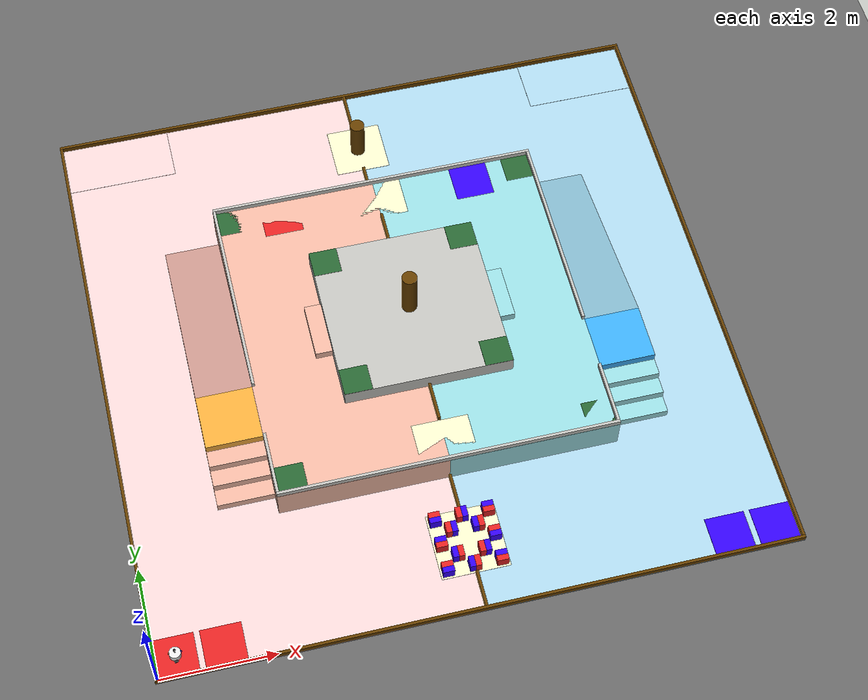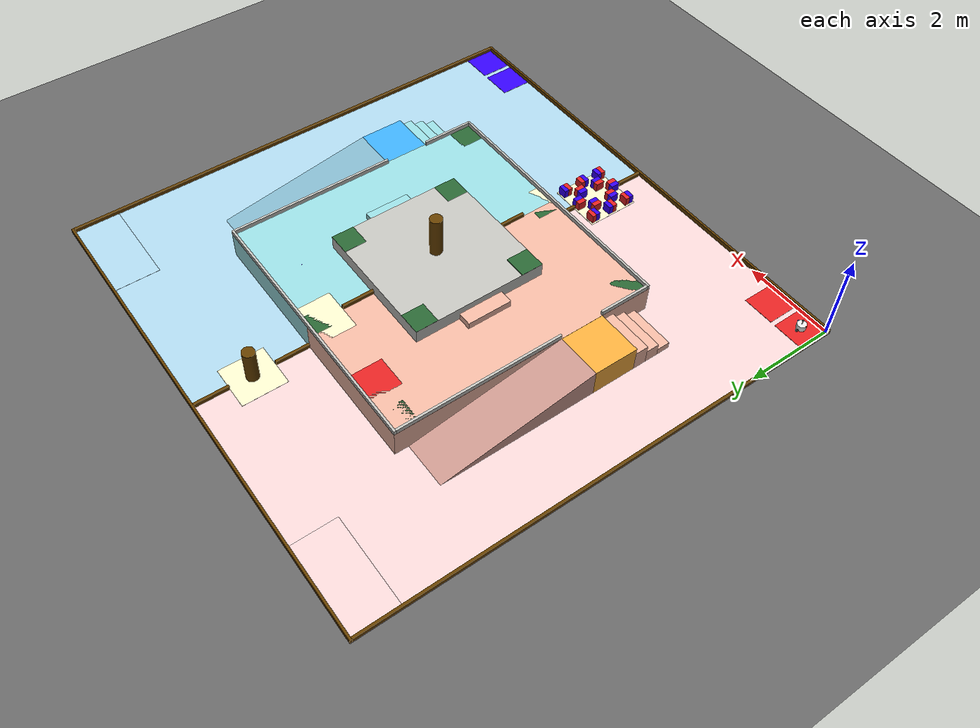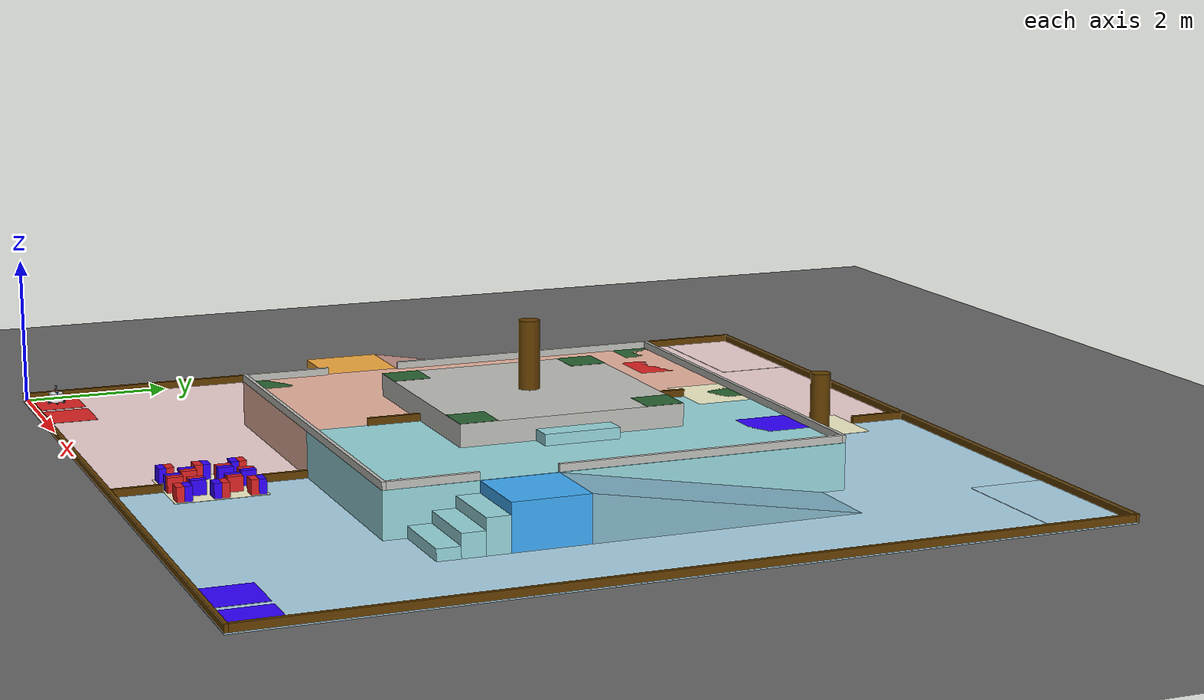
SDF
<?xml version="1.0"?>
<sdf version="1.6">
  <world name="br_field">
    <physics type="ode"><max_step_size>0.005</max_step_size></physics>
    <light type="directional" name="sun"><pose>0 0 6 0 0 0</pose>
      <diffuse>0.9 0.9 0.9 1</diffuse><specular>0.2 0.2 0.2 1</specular>
      <direction>-0.5 0.2 -1</direction></light>
    <model name="ground">
      <static>true</static>
      <link name="ground_link"><visual name="v"><geometry><plane><normal>0 0 1</normal><size>30 30</size></plane></geometry>
      <material><ambient>0.4 0.4 0.4 1</ambient><diffuse>0.4 0.4 0.4 1</diffuse></material></visual>
      <collision name="c"><geometry><plane><normal>0 0 1</normal><size>30 30</size></plane></geometry></collision></link>
    </model>
    <include><uri>model://br_field</uri></include>
    <!-- 仿真载具 (顶替未完工的实车); 出生位姿 = 红区 TR 启动位中心 -->
    <include>
      <uri>model://fishbot</uri>
      <pose>0.35 0.35 0.005 0 0 0.0</pose>
    </include>
  </world>
</sdf>

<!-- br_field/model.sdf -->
<sdf version="1.6">
  <model name="br_field">
    <static>true</static>
    <link name="ground_red">
      <pose>2.725 5.5 -0.025 0 0 0</pose>
      <visual name="v"><geometry><box><size>5.55 11.1 0.05</size></box></geometry><material><ambient>0.941 0.824 0.824 1.00</ambient><diffuse>0.941 0.824 0.824 1.00</diffuse></material></visual>
      <collision name="c"><geometry><box><size>5.55 11.1 0.05</size></box></geometry></collision>
    </link>
    <link name="ground_blue">
      <pose>8.275 5.5 -0.025 0 0 0</pose>
      <visual name="v"><geometry><box><size>5.55 11.1 0.05</size></box></geometry><material><ambient>0.667 0.824 0.902 1.00</ambient><diffuse>0.667 0.824 0.902 1.00</diffuse></material></visual>
      <collision name="c"><geometry><box><size>5.55 11.1 0.05</size></box></geometry></collision>
    </link>
    <link name="ground_shared_area">
      <pose>5.5 9.75 0.002 0 0 0</pose>
      <visual name="v"><geometry><box><size>1 1 0.004</size></box></geometry><material><ambient>0.961 0.941 0.784 1.00</ambient><diffuse>0.961 0.941 0.784 1.00</diffuse></material></visual>
    </link>
    <link name="sky_board">
      <pose>5.5 1.25 0.002 0 0 0</pose>
      <visual name="v"><geometry><box><size>1.2 1.2 0.004</size></box></geometry><material><ambient>0.961 0.941 0.784 1.00</ambient><diffuse>0.961 0.941 0.784 1.00</diffuse></material></visual>
    </link>
    <link name="storage_ours">
      <pose>1 10.5 0.002 0 0 0</pose>
      <visual name="v"><geometry><box><size>2 1 0.004</size></box></geometry><material><ambient>0.941 0.824 0.824 1.00</ambient><diffuse>0.941 0.824 0.824 1.00</diffuse></material></visual>
    </link>
    <link name="storage_theirs">
      <pose>10 10.5 0.002 0 0 0</pose>
      <visual name="v"><geometry><box><size>2 1 0.004</size></box></geometry><material><ambient>0.667 0.824 0.902 1.00</ambient><diffuse>0.667 0.824 0.902 1.00</diffuse></material></visual>
    </link>
    <link name="start_ours_tr">
      <pose>0.35 0.35 0.002 0 0 0</pose>
      <visual name="v"><geometry><box><size>0.7 0.7 0.004</size></box></geometry><material><ambient>0.875 0.133 0.133 1.00</ambient><diffuse>0.875 0.133 0.133 1.00</diffuse></material></visual>
    </link>
    <link name="start_ours_br">
      <pose>1.15 0.35 0.002 0 0 0</pose>
      <visual name="v"><geometry><box><size>0.7 0.7 0.004</size></box></geometry><material><ambient>0.875 0.133 0.133 1.00</ambient><diffuse>0.875 0.133 0.133 1.00</diffuse></material></visual>
    </link>
    <link name="start_theirs_tr">
      <pose>10.65 0.35 0.002 0 0 0</pose>
      <visual name="v"><geometry><box><size>0.7 0.7 0.004</size></box></geometry><material><ambient>0.196 0.000 1.000 1.00</ambient><diffuse>0.196 0.000 1.000 1.00</diffuse></material></visual>
    </link>
    <link name="start_theirs_br">
      <pose>9.85 0.35 0.002 0 0 0</pose>
      <visual name="v"><geometry><box><size>0.7 0.7 0.004</size></box></geometry><material><ambient>0.196 0.000 1.000 1.00</ambient><diffuse>0.196 0.000 1.000 1.00</diffuse></material></visual>
    </link>
    <link name="l1_structure_w">
      <pose>4 5.5 0.3 0 0 0</pose>
      <visual name="v"><geometry><box><size>3 6 0.6</size></box></geometry><material><ambient>0.922 0.706 0.627 1.00</ambient><diffuse>0.922 0.706 0.627 1.00</diffuse></material></visual>
      <collision name="c"><geometry><box><size>3 6 0.6</size></box></geometry></collision>
    </link>
    <link name="l1_structure_e">
      <pose>7 5.5 0.3 0 0 0</pose>
      <visual name="v"><geometry><box><size>3 6 0.6</size></box></geometry><material><ambient>0.588 0.843 0.863 1.00</ambient><diffuse>0.588 0.843 0.863 1.00</diffuse></material></visual>
      <collision name="c"><geometry><box><size>3 6 0.6</size></box></geometry></collision>
    </link>
    <link name="l1_play_w">
      <pose>4 5.5 0.602 0 0 0</pose>
      <visual name="v"><geometry><box><size>3 6 0.004</size></box></geometry><material><ambient>0.922 0.706 0.627 1.00</ambient><diffuse>0.922 0.706 0.627 1.00</diffuse></material></visual>
    </link>
    <link name="l1_play_e">
      <pose>7 5.5 0.602 0 0 0</pose>
      <visual name="v"><geometry><box><size>3 6 0.004</size></box></geometry><material><ambient>0.588 0.843 0.863 1.00</ambient><diffuse>0.588 0.843 0.863 1.00</diffuse></material></visual>
    </link>
    <link name="l1_shared_south">
      <pose>5.5 2.925 0.602 0 0 0</pose>
      <visual name="v"><geometry><box><size>1 0.75 0.004</size></box></geometry><material><ambient>0.961 0.941 0.784 1.00</ambient><diffuse>0.961 0.941 0.784 1.00</diffuse></material></visual>
    </link>
    <link name="l1_shared_north">
      <pose>5.5 8.075 0.602 0 0 0</pose>
      <visual name="v"><geometry><box><size>1 0.75 0.004</size></box></geometry><material><ambient>0.961 0.941 0.784 1.00</ambient><diffuse>0.961 0.941 0.784 1.00</diffuse></material></visual>
    </link>
    <link name="stairs_ours_0">
      <pose>2 2.95 0.075 0 0 0</pose>
      <visual name="v"><geometry><box><size>1 0.3 0.15</size></box></geometry><material><ambient>0.922 0.706 0.627 1.00</ambient><diffuse>0.922 0.706 0.627 1.00</diffuse></material></visual>
      <collision name="c"><geometry><box><size>1 0.3 0.15</size></box></geometry></collision>
    </link>
    <link name="stairs_ours_1">
      <pose>2 3.25 0.15 0 0 0</pose>
      <visual name="v"><geometry><box><size>1 0.3 0.3</size></box></geometry><material><ambient>0.922 0.706 0.627 1.00</ambient><diffuse>0.922 0.706 0.627 1.00</diffuse></material></visual>
      <collision name="c"><geometry><box><size>1 0.3 0.3</size></box></geometry></collision>
    </link>
    <link name="stairs_ours_2">
      <pose>2 3.55 0.225 0 0 0</pose>
      <visual name="v"><geometry><box><size>1 0.3 0.45</size></box></geometry><material><ambient>0.922 0.706 0.627 1.00</ambient><diffuse>0.922 0.706 0.627 1.00</diffuse></material></visual>
      <collision name="c"><geometry><box><size>1 0.3 0.45</size></box></geometry></collision>
    </link>
    <link name="ramp_ours">
      <pose>2 6.45 0 0 0 0</pose>
      <visual name="v"><geometry><mesh><uri>model://br_field/meshes/ramp_red.obj</uri></mesh></geometry><material><ambient>0.784 0.588 0.549 1.00</ambient><diffuse>0.784 0.588 0.549 1.00</diffuse></material></visual>
      <collision name="c"><geometry><mesh><uri>model://br_field/meshes/ramp_red.obj</uri></mesh></geometry></collision>
    </link>
    <link name="transfer_ours">
      <pose>2 4.2 0.3 0 0 0</pose>
      <visual name="v"><geometry><box><size>1 1 0.6</size></box></geometry><material><ambient>0.961 0.667 0.235 1.00</ambient><diffuse>0.961 0.667 0.235 1.00</diffuse></material></visual>
      <collision name="c"><geometry><box><size>1 1 0.6</size></box></geometry></collision>
    </link>
    <link name="stairs_theirs_0">
      <pose>9 2.95 0.075 0 0 0</pose>
      <visual name="v"><geometry><box><size>1 0.3 0.15</size></box></geometry><material><ambient>0.588 0.843 0.863 1.00</ambient><diffuse>0.588 0.843 0.863 1.00</diffuse></material></visual>
      <collision name="c"><geometry><box><size>1 0.3 0.15</size></box></geometry></collision>
    </link>
    <link name="stairs_theirs_1">
      <pose>9 3.25 0.15 0 0 0</pose>
      <visual name="v"><geometry><box><size>1 0.3 0.3</size></box></geometry><material><ambient>0.588 0.843 0.863 1.00</ambient><diffuse>0.588 0.843 0.863 1.00</diffuse></material></visual>
      <collision name="c"><geometry><box><size>1 0.3 0.3</size></box></geometry></collision>
    </link>
    <link name="stairs_theirs_2">
      <pose>9 3.55 0.225 0 0 0</pose>
      <visual name="v"><geometry><box><size>1 0.3 0.45</size></box></geometry><material><ambient>0.588 0.843 0.863 1.00</ambient><diffuse>0.588 0.843 0.863 1.00</diffuse></material></visual>
      <collision name="c"><geometry><box><size>1 0.3 0.45</size></box></geometry></collision>
    </link>
    <link name="ramp_theirs">
      <pose>9 6.45 0 0 0 0</pose>
      <visual name="v"><geometry><mesh><uri>model://br_field/meshes/ramp_blue.obj</uri></mesh></geometry><material><ambient>0.510 0.706 0.784 1.00</ambient><diffuse>0.510 0.706 0.784 1.00</diffuse></material></visual>
      <collision name="c"><geometry><mesh><uri>model://br_field/meshes/ramp_blue.obj</uri></mesh></geometry></collision>
    </link>
    <link name="transfer_theirs">
      <pose>9 4.2 0.3 0 0 0</pose>
      <visual name="v"><geometry><box><size>1 1 0.6</size></box></geometry><material><ambient>0.235 0.667 0.961 1.00</ambient><diffuse>0.235 0.667 0.961 1.00</diffuse></material></visual>
      <collision name="c"><geometry><box><size>1 1 0.6</size></box></geometry></collision>
    </link>
    <link name="l2stair_ours">
      <pose>3.85 5.5 0.675 0 0 0</pose>
      <visual name="v"><geometry><box><size>0.3 1 0.15</size></box></geometry><material><ambient>0.922 0.706 0.627 1.00</ambient><diffuse>0.922 0.706 0.627 1.00</diffuse></material></visual>
      <collision name="c"><geometry><box><size>0.3 1 0.15</size></box></geometry></collision>
    </link>
    <link name="l2stair_theirs">
      <pose>7.15 5.5 0.675 0 0 0</pose>
      <visual name="v"><geometry><box><size>0.3 1 0.15</size></box></geometry><material><ambient>0.588 0.843 0.863 1.00</ambient><diffuse>0.588 0.843 0.863 1.00</diffuse></material></visual>
      <collision name="c"><geometry><box><size>0.3 1 0.15</size></box></geometry></collision>
    </link>
    <link name="l2_platform">
      <pose>5.5 5.5 0.75 0 0 0</pose>
      <visual name="v"><geometry><box><size>3 3 0.3</size></box></geometry><material><ambient>0.745 0.745 0.725 1.00</ambient><diffuse>0.745 0.745 0.725 1.00</diffuse></material></visual>
      <collision name="c"><geometry><box><size>3 3 0.3</size></box></geometry></collision>
    </link>
    <link name="spot_00">
      <pose>2.8 2.8 0.602 0 0 0</pose>
      <visual name="v"><geometry><box><size>0.5 0.5 0.004</size></box></geometry><material><ambient>0.157 0.392 0.196 1.00</ambient><diffuse>0.157 0.392 0.196 1.00</diffuse></material></visual>
    </link>
    <link name="spot_01">
      <pose>2.8 8.2 0.602 0 0 0</pose>
      <visual name="v"><geometry><box><size>0.5 0.5 0.004</size></box></geometry><material><ambient>0.157 0.392 0.196 1.00</ambient><diffuse>0.157 0.392 0.196 1.00</diffuse></material></visual>
    </link>
    <link name="spot_02">
      <pose>8.2 2.8 0.602 0 0 0</pose>
      <visual name="v"><geometry><box><size>0.5 0.5 0.004</size></box></geometry><material><ambient>0.157 0.392 0.196 1.00</ambient><diffuse>0.157 0.392 0.196 1.00</diffuse></material></visual>
    </link>
    <link name="spot_03">
      <pose>8.2 8.2 0.602 0 0 0</pose>
      <visual name="v"><geometry><box><size>0.5 0.5 0.004</size></box></geometry><material><ambient>0.157 0.392 0.196 1.00</ambient><diffuse>0.157 0.392 0.196 1.00</diffuse></material></visual>
    </link>
    <link name="spot_04">
      <pose>5.5 2.8 0.602 0 0 0</pose>
      <visual name="v"><geometry><box><size>0.5 0.5 0.004</size></box></geometry><material><ambient>0.157 0.392 0.196 1.00</ambient><diffuse>0.157 0.392 0.196 1.00</diffuse></material></visual>
    </link>
    <link name="spot_05">
      <pose>5.5 8.2 0.602 0 0 0</pose>
      <visual name="v"><geometry><box><size>0.5 0.5 0.004</size></box></geometry><material><ambient>0.157 0.392 0.196 1.00</ambient><diffuse>0.157 0.392 0.196 1.00</diffuse></material></visual>
    </link>
    <link name="spot_06">
      <pose>4.25 4.25 0.902 0 0 0</pose>
      <visual name="v"><geometry><box><size>0.5 0.5 0.004</size></box></geometry><material><ambient>0.157 0.392 0.196 1.00</ambient><diffuse>0.157 0.392 0.196 1.00</diffuse></material></visual>
    </link>
    <link name="spot_07">
      <pose>6.75 4.25 0.902 0 0 0</pose>
      <visual name="v"><geometry><box><size>0.5 0.5 0.004</size></box></geometry><material><ambient>0.157 0.392 0.196 1.00</ambient><diffuse>0.157 0.392 0.196 1.00</diffuse></material></visual>
    </link>
    <link name="spot_08">
      <pose>6.75 6.75 0.902 0 0 0</pose>
      <visual name="v"><geometry><box><size>0.5 0.5 0.004</size></box></geometry><material><ambient>0.157 0.392 0.196 1.00</ambient><diffuse>0.157 0.392 0.196 1.00</diffuse></material></visual>
    </link>
    <link name="spot_09">
      <pose>4.25 6.75 0.902 0 0 0</pose>
      <visual name="v"><geometry><box><size>0.5 0.5 0.004</size></box></geometry><material><ambient>0.157 0.392 0.196 1.00</ambient><diffuse>0.157 0.392 0.196 1.00</diffuse></material></visual>
    </link>
    <link name="mustika_pillar">
      <pose>5.5 9.75 0.25 0 0 0</pose>
      <visual name="v"><geometry><cylinder><radius>0.135</radius><height>0.5</height></cylinder></geometry><material><ambient>0.392 0.243 0.000 1.00</ambient><diffuse>0.392 0.243 0.000 1.00</diffuse></material></visual>
      <collision name="c"><geometry><cylinder><radius>0.135</radius><height>0.5</height></cylinder></geometry></collision>
    </link>
    <link name="core_pillar">
      <pose>5.5 5.5 1.3 0 0 0</pose>
      <visual name="v"><geometry><cylinder><radius>0.135</radius><height>0.8</height></cylinder></geometry><material><ambient>0.392 0.243 0.000 1.00</ambient><diffuse>0.392 0.243 0.000 1.00</diffuse></material></visual>
      <collision name="c"><geometry><cylinder><radius>0.135</radius><height>0.8</height></cylinder></geometry></collision>
    </link>
    <link name="sky_00_0">
      <pose>5.0333 0.8333 0.1 0 0 0</pose>
      <visual name="v"><geometry><box><size>0.2 0.1 0.2</size></box></geometry><material><ambient>0.875 0.133 0.133 1.00</ambient><diffuse>0.875 0.133 0.133 1.00</diffuse></material></visual>
      <collision name="c"><geometry><box><size>0.2 0.1 0.2</size></box></geometry></collision>
    </link>
    <link name="sky_00_1">
      <pose>5.0333 0.7333 0.1 0 0 0</pose>
      <visual name="v"><geometry><box><size>0.2 0.1 0.2</size></box></geometry><material><ambient>0.196 0.000 1.000 1.00</ambient><diffuse>0.196 0.000 1.000 1.00</diffuse></material></visual>
      <collision name="c"><geometry><box><size>0.2 0.1 0.2</size></box></geometry></collision>
    </link>
    <link name="sky_01_0">
      <pose>5.55 0.7833 0.1 0 0 0</pose>
      <visual name="v"><geometry><box><size>0.1 0.2 0.2</size></box></geometry><material><ambient>0.875 0.133 0.133 1.00</ambient><diffuse>0.875 0.133 0.133 1.00</diffuse></material></visual>
      <collision name="c"><geometry><box><size>0.1 0.2 0.2</size></box></geometry></collision>
    </link>
    <link name="sky_01_1">
      <pose>5.45 0.7833 0.1 0 0 0</pose>
      <visual name="v"><geometry><box><size>0.1 0.2 0.2</size></box></geometry><material><ambient>0.196 0.000 1.000 1.00</ambient><diffuse>0.196 0.000 1.000 1.00</diffuse></material></visual>
      <collision name="c"><geometry><box><size>0.1 0.2 0.2</size></box></geometry></collision>
    </link>
    <link name="sky_02_0">
      <pose>5.9667 0.7333 0.1 0 0 0</pose>
      <visual name="v"><geometry><box><size>0.2 0.1 0.2</size></box></geometry><material><ambient>0.875 0.133 0.133 1.00</ambient><diffuse>0.875 0.133 0.133 1.00</diffuse></material></visual>
      <collision name="c"><geometry><box><size>0.2 0.1 0.2</size></box></geometry></collision>
    </link>
    <link name="sky_02_1">
      <pose>5.9667 0.8333 0.1 0 0 0</pose>
      <visual name="v"><geometry><box><size>0.2 0.1 0.2</size></box></geometry><material><ambient>0.196 0.000 1.000 1.00</ambient><diffuse>0.196 0.000 1.000 1.00</diffuse></material></visual>
      <collision name="c"><geometry><box><size>0.2 0.1 0.2</size></box></geometry></collision>
    </link>
    <link name="sky_03_0">
      <pose>5.3167 1.0167 0.1 0 0 0</pose>
      <visual name="v"><geometry><box><size>0.1 0.2 0.2</size></box></geometry><material><ambient>0.875 0.133 0.133 1.00</ambient><diffuse>0.875 0.133 0.133 1.00</diffuse></material></visual>
      <collision name="c"><geometry><box><size>0.1 0.2 0.2</size></box></geometry></collision>
    </link>
    <link name="sky_03_1">
      <pose>5.2167 1.0167 0.1 0 0 0</pose>
      <visual name="v"><geometry><box><size>0.1 0.2 0.2</size></box></geometry><material><ambient>0.196 0.000 1.000 1.00</ambient><diffuse>0.196 0.000 1.000 1.00</diffuse></material></visual>
      <collision name="c"><geometry><box><size>0.1 0.2 0.2</size></box></geometry></collision>
    </link>
    <link name="sky_04_0">
      <pose>5.6833 1.0167 0.1 0 0 0</pose>
      <visual name="v"><geometry><box><size>0.1 0.2 0.2</size></box></geometry><material><ambient>0.875 0.133 0.133 1.00</ambient><diffuse>0.875 0.133 0.133 1.00</diffuse></material></visual>
      <collision name="c"><geometry><box><size>0.1 0.2 0.2</size></box></geometry></collision>
    </link>
    <link name="sky_04_1">
      <pose>5.7833 1.0167 0.1 0 0 0</pose>
      <visual name="v"><geometry><box><size>0.1 0.2 0.2</size></box></geometry><material><ambient>0.196 0.000 1.000 1.00</ambient><diffuse>0.196 0.000 1.000 1.00</diffuse></material></visual>
      <collision name="c"><geometry><box><size>0.1 0.2 0.2</size></box></geometry></collision>
    </link>
    <link name="sky_05_0">
      <pose>5.0333 1.2 0.1 0 0 0</pose>
      <visual name="v"><geometry><box><size>0.2 0.1 0.2</size></box></geometry><material><ambient>0.875 0.133 0.133 1.00</ambient><diffuse>0.875 0.133 0.133 1.00</diffuse></material></visual>
      <collision name="c"><geometry><box><size>0.2 0.1 0.2</size></box></geometry></collision>
    </link>
    <link name="sky_05_1">
      <pose>5.0333 1.3 0.1 0 0 0</pose>
      <visual name="v"><geometry><box><size>0.2 0.1 0.2</size></box></geometry><material><ambient>0.196 0.000 1.000 1.00</ambient><diffuse>0.196 0.000 1.000 1.00</diffuse></material></visual>
      <collision name="c"><geometry><box><size>0.2 0.1 0.2</size></box></geometry></collision>
    </link>
    <link name="sky_06_0">
      <pose>5.9667 1.3 0.1 0 0 0</pose>
      <visual name="v"><geometry><box><size>0.2 0.1 0.2</size></box></geometry><material><ambient>0.875 0.133 0.133 1.00</ambient><diffuse>0.875 0.133 0.133 1.00</diffuse></material></visual>
      <collision name="c"><geometry><box><size>0.2 0.1 0.2</size></box></geometry></collision>
    </link>
    <link name="sky_06_1">
      <pose>5.9667 1.2 0.1 0 0 0</pose>
      <visual name="v"><geometry><box><size>0.2 0.1 0.2</size></box></geometry><material><ambient>0.196 0.000 1.000 1.00</ambient><diffuse>0.196 0.000 1.000 1.00</diffuse></material></visual>
      <collision name="c"><geometry><box><size>0.2 0.1 0.2</size></box></geometry></collision>
    </link>
    <link name="sky_07_0">
      <pose>5.2167 1.4833 0.1 0 0 0</pose>
      <visual name="v"><geometry><box><size>0.1 0.2 0.2</size></box></geometry><material><ambient>0.875 0.133 0.133 1.00</ambient><diffuse>0.875 0.133 0.133 1.00</diffuse></material></visual>
      <collision name="c"><geometry><box><size>0.1 0.2 0.2</size></box></geometry></collision>
    </link>
    <link name="sky_07_1">
      <pose>5.3167 1.4833 0.1 0 0 0</pose>
      <visual name="v"><geometry><box><size>0.1 0.2 0.2</size></box></geometry><material><ambient>0.196 0.000 1.000 1.00</ambient><diffuse>0.196 0.000 1.000 1.00</diffuse></material></visual>
      <collision name="c"><geometry><box><size>0.1 0.2 0.2</size></box></geometry></collision>
    </link>
    <link name="sky_08_0">
      <pose>5.7833 1.4833 0.1 0 0 0</pose>
      <visual name="v"><geometry><box><size>0.1 0.2 0.2</size></box></geometry><material><ambient>0.875 0.133 0.133 1.00</ambient><diffuse>0.875 0.133 0.133 1.00</diffuse></material></visual>
      <collision name="c"><geometry><box><size>0.1 0.2 0.2</size></box></geometry></collision>
    </link>
    <link name="sky_08_1">
      <pose>5.6833 1.4833 0.1 0 0 0</pose>
      <visual name="v"><geometry><box><size>0.1 0.2 0.2</size></box></geometry><material><ambient>0.196 0.000 1.000 1.00</ambient><diffuse>0.196 0.000 1.000 1.00</diffuse></material></visual>
      <collision name="c"><geometry><box><size>0.1 0.2 0.2</size></box></geometry></collision>
    </link>
    <link name="sky_09_0">
      <pose>5.0333 1.7667 0.1 0 0 0</pose>
      <visual name="v"><geometry><box><size>0.2 0.1 0.2</size></box></geometry><material><ambient>0.875 0.133 0.133 1.00</ambient><diffuse>0.875 0.133 0.133 1.00</diffuse></material></visual>
      <collision name="c"><geometry><box><size>0.2 0.1 0.2</size></box></geometry></collision>
    </link>
    <link name="sky_09_1">
      <pose>5.0333 1.6667 0.1 0 0 0</pose>
      <visual name="v"><geometry><box><size>0.2 0.1 0.2</size></box></geometry><material><ambient>0.196 0.000 1.000 1.00</ambient><diffuse>0.196 0.000 1.000 1.00</diffuse></material></visual>
      <collision name="c"><geometry><box><size>0.2 0.1 0.2</size></box></geometry></collision>
    </link>
    <link name="sky_10_0">
      <pose>5.45 1.7167 0.1 0 0 0</pose>
      <visual name="v"><geometry><box><size>0.1 0.2 0.2</size></box></geometry><material><ambient>0.875 0.133 0.133 1.00</ambient><diffuse>0.875 0.133 0.133 1.00</diffuse></material></visual>
      <collision name="c"><geometry><box><size>0.1 0.2 0.2</size></box></geometry></collision>
    </link>
    <link name="sky_10_1">
      <pose>5.55 1.7167 0.1 0 0 0</pose>
      <visual name="v"><geometry><box><size>0.1 0.2 0.2</size></box></geometry><material><ambient>0.196 0.000 1.000 1.00</ambient><diffuse>0.196 0.000 1.000 1.00</diffuse></material></visual>
      <collision name="c"><geometry><box><size>0.1 0.2 0.2</size></box></geometry></collision>
    </link>
    <link name="sky_11_0">
      <pose>5.9667 1.6667 0.1 0 0 0</pose>
      <visual name="v"><geometry><box><size>0.2 0.1 0.2</size></box></geometry><material><ambient>0.875 0.133 0.133 1.00</ambient><diffuse>0.875 0.133 0.133 1.00</diffuse></material></visual>
      <collision name="c"><geometry><box><size>0.2 0.1 0.2</size></box></geometry></collision>
    </link>
    <link name="sky_11_1">
      <pose>5.9667 1.7667 0.1 0 0 0</pose>
      <visual name="v"><geometry><box><size>0.2 0.1 0.2</size></box></geometry><material><ambient>0.196 0.000 1.000 1.00</ambient><diffuse>0.196 0.000 1.000 1.00</diffuse></material></visual>
      <collision name="c"><geometry><box><size>0.2 0.1 0.2</size></box></geometry></collision>
    </link>
    <link name="fence_s">
      <pose>5.5 -0.025 0.05 0 0 0</pose>
      <visual name="v"><geometry><box><size>11.1 0.05 0.1</size></box></geometry><material><ambient>0.392 0.243 0.000 1.00</ambient><diffuse>0.392 0.243 0.000 1.00</diffuse></material></visual>
      <collision name="c"><geometry><box><size>11.1 0.05 0.1</size></box></geometry></collision>
    </link>
    <link name="fence_n">
      <pose>5.5 11.025 0.05 0 0 0</pose>
      <visual name="v"><geometry><box><size>11.1 0.05 0.1</size></box></geometry><material><ambient>0.392 0.243 0.000 1.00</ambient><diffuse>0.392 0.243 0.000 1.00</diffuse></material></visual>
      <collision name="c"><geometry><box><size>11.1 0.05 0.1</size></box></geometry></collision>
    </link>
    <link name="fence_w">
      <pose>-0.025 5.5 0.05 0 0 0</pose>
      <visual name="v"><geometry><box><size>0.05 11 0.1</size></box></geometry><material><ambient>0.392 0.243 0.000 1.00</ambient><diffuse>0.392 0.243 0.000 1.00</diffuse></material></visual>
      <collision name="c"><geometry><box><size>0.05 11 0.1</size></box></geometry></collision>
    </link>
    <link name="fence_e">
      <pose>11.025 5.5 0.05 0 0 0</pose>
      <visual name="v"><geometry><box><size>0.05 11 0.1</size></box></geometry><material><ambient>0.392 0.243 0.000 1.00</ambient><diffuse>0.392 0.243 0.000 1.00</diffuse></material></visual>
      <collision name="c"><geometry><box><size>0.05 11 0.1</size></box></geometry></collision>
    </link>
    <link name="divider_g_0">
      <pose>5.5 0.325 0.05 0 0 0</pose>
      <visual name="v"><geometry><box><size>0.05 0.65 0.1</size></box></geometry><material><ambient>0.392 0.243 0.000 1.00</ambient><diffuse>0.392 0.243 0.000 1.00</diffuse></material></visual>
      <collision name="c"><geometry><box><size>0.05 0.65 0.1</size></box></geometry></collision>
    </link>
    <link name="divider_g_1">
      <pose>5.5 2.175 0.05 0 0 0</pose>
      <visual name="v"><geometry><box><size>0.05 0.65 0.1</size></box></geometry><material><ambient>0.392 0.243 0.000 1.00</ambient><diffuse>0.392 0.243 0.000 1.00</diffuse></material></visual>
      <collision name="c"><geometry><box><size>0.05 0.65 0.1</size></box></geometry></collision>
    </link>
    <link name="divider_g_2">
      <pose>5.5 8.875 0.05 0 0 0</pose>
      <visual name="v"><geometry><box><size>0.05 0.75 0.1</size></box></geometry><material><ambient>0.392 0.243 0.000 1.00</ambient><diffuse>0.392 0.243 0.000 1.00</diffuse></material></visual>
      <collision name="c"><geometry><box><size>0.05 0.75 0.1</size></box></geometry></collision>
    </link>
    <link name="divider_g_3">
      <pose>5.5 10.625 0.05 0 0 0</pose>
      <visual name="v"><geometry><box><size>0.05 0.75 0.1</size></box></geometry><material><ambient>0.392 0.243 0.000 1.00</ambient><diffuse>0.392 0.243 0.000 1.00</diffuse></material></visual>
      <collision name="c"><geometry><box><size>0.05 0.75 0.1</size></box></geometry></collision>
    </link>
    <link name="divider_l1_0">
      <pose>5.5 3.65 0.65 0 0 0</pose>
      <visual name="v"><geometry><box><size>0.05 0.7 0.1</size></box></geometry><material><ambient>0.392 0.243 0.000 1.00</ambient><diffuse>0.392 0.243 0.000 1.00</diffuse></material></visual>
      <collision name="c"><geometry><box><size>0.05 0.7 0.1</size></box></geometry></collision>
    </link>
    <link name="divider_l1_1">
      <pose>5.5 7.35 0.65 0 0 0</pose>
      <visual name="v"><geometry><box><size>0.05 0.7 0.1</size></box></geometry><material><ambient>0.392 0.243 0.000 1.00</ambient><diffuse>0.392 0.243 0.000 1.00</diffuse></material></visual>
      <collision name="c"><geometry><box><size>0.05 0.7 0.1</size></box></geometry></collision>
    </link>
    <link name="l1pb_s">
      <pose>5.5 2.525 0.65 0 0 0</pose>
      <visual name="v"><geometry><box><size>6 0.05 0.1</size></box></geometry><material><ambient>0.745 0.745 0.725 1.00</ambient><diffuse>0.745 0.745 0.725 1.00</diffuse></material></visual>
      <collision name="c"><geometry><box><size>6 0.05 0.1</size></box></geometry></collision>
    </link>
    <link name="l1pb_n">
      <pose>5.5 8.475 0.65 0 0 0</pose>
      <visual name="v"><geometry><box><size>6 0.05 0.1</size></box></geometry><material><ambient>0.745 0.745 0.725 1.00</ambient><diffuse>0.745 0.745 0.725 1.00</diffuse></material></visual>
      <collision name="c"><geometry><box><size>6 0.05 0.1</size></box></geometry></collision>
    </link>
    <link name="l1pb_w_s">
      <pose>2.525 3.125 0.65 0 0 0</pose>
      <visual name="v"><geometry><box><size>0.05 1.15 0.1</size></box></geometry><material><ambient>0.745 0.745 0.725 1.00</ambient><diffuse>0.745 0.745 0.725 1.00</diffuse></material></visual>
      <collision name="c"><geometry><box><size>0.05 1.15 0.1</size></box></geometry></collision>
    </link>
    <link name="l1pb_w_n">
      <pose>2.525 6.575 0.65 0 0 0</pose>
      <visual name="v"><geometry><box><size>0.05 3.75 0.1</size></box></geometry><material><ambient>0.745 0.745 0.725 1.00</ambient><diffuse>0.745 0.745 0.725 1.00</diffuse></material></visual>
      <collision name="c"><geometry><box><size>0.05 3.75 0.1</size></box></geometry></collision>
    </link>
    <link name="l1pb_e_s">
      <pose>8.475 3.125 0.65 0 0 0</pose>
      <visual name="v"><geometry><box><size>0.05 1.15 0.1</size></box></geometry><material><ambient>0.745 0.745 0.725 1.00</ambient><diffuse>0.745 0.745 0.725 1.00</diffuse></material></visual>
      <collision name="c"><geometry><box><size>0.05 1.15 0.1</size></box></geometry></collision>
    </link>
    <link name="l1pb_e_n">
      <pose>8.475 6.575 0.65 0 0 0</pose>
      <visual name="v"><geometry><box><size>0.05 3.75 0.1</size></box></geometry><material><ambient>0.745 0.745 0.725 1.00</ambient><diffuse>0.745 0.745 0.725 1.00</diffuse></material></visual>
      <collision name="c"><geometry><box><size>0.05 3.75 0.1</size></box></geometry></collision>
    </link>
    <link name="retry_ours">
      <pose>3.7 8.1 0.602 0 0 0</pose>
      <visual name="v"><geometry><box><size>0.7 0.7 0.004</size></box></geometry><material><ambient>0.875 0.133 0.133 1.00</ambient><diffuse>0.875 0.133 0.133 1.00</diffuse></material></visual>
    </link>
    <link name="retry_theirs">
      <pose>7.3 8.1 0.602 0 0 0</pose>
      <visual name="v"><geometry><box><size>0.7 0.7 0.004</size></box></geometry><material><ambient>0.196 0.000 1.000 1.00</ambient><diffuse>0.196 0.000 1.000 1.00</diffuse></material></visual>
    </link>
  </model>
</sdf>

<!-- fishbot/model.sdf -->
<sdf version="1.7">
  <model name="fishbot">
    <static>false</static>

    <!-- ═══ 车体 (含所有固定传感器) ═══ -->
    <link name="base_link">
      <inertial>
        <pose>0.007143 0 0.106829 0 0 0</pose>
        <mass>1.4</mass>
        <inertia>
          <ixx>0.00737458</ixx>
          <ixy>0</ixy>
          <ixz>-0.000600714</ixz>
          <iyy>0.00894315</iyy>
          <iyz>0</iyz>
          <izz>0.00661131</izz>
        </inertia>
      </inertial>

      <collision name="base_collision">
        <pose>0 0 0.0919 0 0 0</pose>
        <geometry><cylinder><length>0.12</length><radius>0.1</radius></cylinder></geometry>
      </collision>
      <visual name="base_visual">
        <pose>0 0 0.0919 0 0 0</pose>
        <geometry><cylinder><length>0.12</length><radius>0.1</radius></cylinder></geometry>
        <material><ambient>0.9 0.9 0.9 1</ambient><diffuse>0.9 0.9 0.9 1</diffuse></material>
      </visual>

      <!-- 前后万向轮 (无摩擦球, 只起支撑) -->
      <collision name="front_caster_collision">
        <pose>0.08 0 0.0159 0 0 0</pose>
        <geometry><sphere><radius>0.016</radius></sphere></geometry>
        <surface>
          <contact><ode><kp>1e+09</kp><kd>1</kd></ode></contact>
          <friction><ode><mu>0</mu><mu2>0</mu2></ode></friction>
        </surface>
      </collision>
      <visual name="front_caster_visual">
        <pose>0.08 0 0.0159 0 0 0</pose>
        <geometry><sphere><radius>0.016</radius></sphere></geometry>
        <material><ambient>0.2 0.2 0.2 1</ambient><diffuse>0.2 0.2 0.2 1</diffuse></material>
      </visual>
      <collision name="back_caster_collision">
        <pose>-0.08 0 0.0159 0 0 0</pose>
        <geometry><sphere><radius>0.016</radius></sphere></geometry>
        <surface>
          <contact><ode><kp>1e+09</kp><kd>1</kd></ode></contact>
          <friction><ode><mu>0</mu><mu2>0</mu2></ode></friction>
        </surface>
      </collision>
      <visual name="back_caster_visual">
        <pose>-0.08 0 0.0159 0 0 0</pose>
        <geometry><sphere><radius>0.016</radius></sphere></geometry>
        <material><ambient>0.2 0.2 0.2 1</ambient><diffuse>0.2 0.2 0.2 1</diffuse></material>
      </visual>

      <!-- 雷达支撑杆 + 雷达外壳 (纯装饰, 位置对应 livox_frame) -->
      <visual name="lidar_mast_visual">
        <pose>0 0 0.1919 0 0 0</pose>
        <geometry><cylinder><length>0.1</length><radius>0.01</radius></cylinder></geometry>
        <material><ambient>0.1 0.1 0.1 1</ambient><diffuse>0.1 0.1 0.1 1</diffuse></material>
      </visual>
      <visual name="lidar_head_visual">
        <pose>0 0 0.2419 0 0 0</pose>
        <geometry><cylinder><length>0.02</length><radius>0.02</radius></cylinder></geometry>
        <material><ambient>0.1 0.1 0.1 1</ambient><diffuse>0.1 0.1 0.1 1</diffuse></material>
      </visual>

      <visual name="camera_front_visual">
        <pose>0.1 0 0.1669 0 0 0</pose>
        <geometry><box><size>0.02 0.02 0.02</size></box></geometry>
        <material><ambient>0.1 0.25 0.7 1</ambient><diffuse>0.1 0.25 0.7 1</diffuse></material>
      </visual>
      <visual name="camera_rear_visual">
        <pose>-0.1 0 0.1669 0 0 0</pose>
        <geometry><box><size>0.02 0.02 0.02</size></box></geometry>
        <material><ambient>0.7 0.25 0.1 1</ambient><diffuse>0.7 0.25 0.1 1</diffuse></material>
      </visual>
      <visual name="camera_depth_visual">
        <pose>0.105 0 0.125 0 0 0</pose>
        <geometry><box><size>0.02 0.02 0.02</size></box></geometry>
        <material><ambient>0.55 0.1 0.65 1</ambient><diffuse>0.55 0.1 0.65 1</diffuse></material>
      </visual>
      <visual name="imu_visual">
        <pose>0 0 0.1119 0 0 0</pose>
        <geometry><box><size>0.02 0.02 0.02</size></box></geometry>
        <material><ambient>0.1 0.6 0.2 1</ambient><diffuse>0.1 0.6 0.2 1</diffuse></material>
      </visual>

      <!-- ─── 雷达: 16 线 ray → PointCloud2 ───
           参数照搬 sensor_rig: 水平 360 / 垂直 16 / ±0.26 rad / 0.05~15.0m
           桥接节点 pointcloud2_to_livox_custom 的 elev ±14.9° = 0.26 rad 与此对应 -->
      <sensor name="livox" type="ray">
        <pose>0 0 0.2419 0 0 0</pose>
        <always_on>1</always_on>
        <visualize>0</visualize>
        <update_rate>10</update_rate>
        <ray>
          <scan>
            <horizontal>
              <samples>360</samples>
              <resolution>1</resolution>
              <min_angle>-3.1416</min_angle>
              <max_angle>3.1416</max_angle>
            </horizontal>
            <vertical>
              <samples>16</samples>
              <resolution>1</resolution>
              <min_angle>-0.26</min_angle>
              <max_angle>0.26</max_angle>
            </vertical>
          </scan>
          <range>
            <min>0.05</min>
            <max>15.0</max>
            <resolution>0.01</resolution>
          </range>
        </ray>
        <plugin name="gazebo_ros_ray_sensor" filename="libgazebo_ros_ray_sensor.so">
          <ros>
            <namespace>/</namespace>
            <remapping>~/out:=/livox/lidar/pointcloud</remapping>
          </ros>
          <output_type>sensor_msgs/PointCloud2</output_type>
          <frame_name>livox_frame</frame_name>
        </plugin>
      </sensor>

      <!-- ─── IMU → /imu/data ─── -->
      <sensor name="imu_s" type="imu">
        <pose>0 0 0.1119 0 0 0</pose>
        <always_on>1</always_on>
        <update_rate>100</update_rate>
        <plugin name="gazebo_ros_imu" filename="libgazebo_ros_imu_sensor.so">
          <ros>
            <namespace>/</namespace>
            <remapping>~/out:=/imu/data</remapping>
          </ros>
          <initial_orientation_as_reference>false</initial_orientation_as_reference>
          <frame_name>imu_link</frame_name>
        </plugin>
      </sensor>

      <!-- ─── 前相机 → /camera_front/image_raw ─── -->
      <sensor name="cam_front_s" type="camera">
        <pose>0.1 0 0.1669 0 0 0</pose>
        <always_on>1</always_on>
        <update_rate>30</update_rate>
        <camera>
          <horizontal_fov>1.1</horizontal_fov>
          <image><width>640</width><height>384</height><format>R8G8B8</format></image>
          <clip><near>0.05</near><far>30.0</far></clip>
        </camera>
        <plugin name="gazebo_ros_camera_cam_front" filename="libgazebo_ros_camera.so">
          <ros>
            <namespace>/</namespace>
            <remapping>~/image_raw:=/camera_front/image_raw</remapping>
          </ros>
          <camera_name>camera_front</camera_name>
          <frame_name>camera_front_frame</frame_name>
        </plugin>
      </sensor>

      <sensor name="cam_depth_s" type="depth">
        <pose>0.105 0 0.125 0 0 0</pose>
        <always_on>1</always_on>
        <update_rate>30</update_rate>
        <camera>
          <horizontal_fov>1.5</horizontal_fov>
          <image><width>640</width><height>384</height><format>R8G8B8</format></image>
          <clip><near>0.05</near><far>10.0</far></clip>
        </camera>
        <plugin name="gazebo_ros_camera_cam_depth" filename="libgazebo_ros_camera.so">
          <ros><namespace>/</namespace></ros>
          <camera_name>camera_depth</camera_name>
          <frame_name>camera_depth_frame</frame_name>
        </plugin>
      </sensor>

      <!-- ─── 后相机 (车尾, 绕 z 转 180°) → /camera_rear/image_raw ─── -->
      <sensor name="cam_rear_s" type="camera">
        <pose>-0.1 0 0.1669 0 0 3.1416</pose>
        <always_on>1</always_on>
        <update_rate>30</update_rate>
        <camera>
          <horizontal_fov>1.1</horizontal_fov>
          <image><width>640</width><height>384</height><format>R8G8B8</format></image>
          <clip><near>0.05</near><far>30.0</far></clip>
        </camera>
        <plugin name="gazebo_ros_camera_cam_rear" filename="libgazebo_ros_camera.so">
          <ros>
            <namespace>/</namespace>
            <remapping>~/image_raw:=/camera_rear/image_raw</remapping>
          </ros>
          <camera_name>camera_rear</camera_name>
          <frame_name>camera_rear_frame</frame_name>
        </plugin>
      </sensor>
    </link>

    <!-- ═══ 驱动轮 ═══ -->
    <link name="left_wheel_link">
      <!-- ⚠ 必须显式声明相对关节的 pose: 缺了它 link 会落回模型原点,
           轮子位置塌进车体, 物理直接崩 (车会自己漂+歪 18°) -->
      <pose relative_to="left_wheel_joint">0 0 0 0 0 0</pose>
      <inertial>
        <pose>0 0 0 0 0 0</pose>
        <mass>0.05</mass>
        <inertia>
          <ixx>1.94667e-05</ixx>
          <ixy>0</ixy><ixz>0</ixz>
          <iyy>1.94667e-05</iyy>
          <iyz>0</iyz>
          <izz>2.56e-05</izz>
        </inertia>
      </inertial>
      <collision name="left_wheel_collision">
        <pose>0 0 0 1.57079 0 0</pose>
        <geometry><cylinder><length>0.04</length><radius>0.032</radius></cylinder></geometry>
        <surface>
          <contact><ode><kp>1e+09</kp><kd>1</kd></ode></contact>
          <friction><ode><mu>20</mu><mu2>20</mu2></ode></friction>
        </surface>
      </collision>
      <visual name="left_wheel_visual">
        <pose>0 0 0 1.57079 0 0</pose>
        <geometry><cylinder><length>0.04</length><radius>0.032</radius></cylinder></geometry>
        <material><ambient>0.15 0.15 0.15 1</ambient><diffuse>0.15 0.15 0.15 1</diffuse></material>
      </visual>
    </link>

    <link name="right_wheel_link">
      <pose relative_to="right_wheel_joint">0 0 0 0 0 0</pose>
      <inertial>
        <pose>0 0 0 0 0 0</pose>
        <mass>0.05</mass>
        <inertia>
          <ixx>1.94667e-05</ixx>
          <ixy>0</ixy><ixz>0</ixz>
          <iyy>1.94667e-05</iyy>
          <iyz>0</iyz>
          <izz>2.56e-05</izz>
        </inertia>
      </inertial>
      <collision name="right_wheel_collision">
        <pose>0 0 0 1.57079 0 0</pose>
        <geometry><cylinder><length>0.04</length><radius>0.032</radius></cylinder></geometry>
        <surface>
          <contact><ode><kp>1e+09</kp><kd>1</kd></ode></contact>
          <friction><ode><mu>20</mu><mu2>20</mu2></ode></friction>
        </surface>
      </collision>
      <visual name="right_wheel_visual">
        <pose>0 0 0 1.57079 0 0</pose>
        <geometry><cylinder><length>0.04</length><radius>0.032</radius></cylinder></geometry>
        <material><ambient>0.15 0.15 0.15 1</ambient><diffuse>0.15 0.15 0.15 1</diffuse></material>
      </visual>
    </link>

    <joint name="left_wheel_joint" type="revolute">
      <pose relative_to="base_link">0 0.1 0.0319 0 0 0</pose>
      <parent>base_link</parent>
      <child>left_wheel_link</child>
      <axis>
        <xyz>0 1 0</xyz>
        <limit><lower>-1e+16</lower><upper>1e+16</upper></limit>
        <dynamics><spring_reference>0</spring_reference><spring_stiffness>0</spring_stiffness></dynamics>
      </axis>
    </joint>

    <joint name="right_wheel_joint" type="revolute">
      <pose relative_to="base_link">0 -0.1 0.0319 0 0 0</pose>
      <parent>base_link</parent>
      <child>right_wheel_link</child>
      <axis>
        <xyz>0 1 0</xyz>
        <limit><lower>-1e+16</lower><upper>1e+16</upper></limit>
        <dynamics><spring_reference>0</spring_reference><spring_stiffness>0</spring_stiffness></dynamics>
      </axis>
    </joint>

    <!-- ═══ 差速驱动 ═══
         话题与 sensor_rig 时代的 planar_move 保持一致: /cmd_vel 进, /odom 出。
         robot_base_frame=base_link 与 fusion_params.yaml 的 robot_base_frame 对齐。 -->
    <plugin name="diff_drive" filename="libgazebo_ros_diff_drive.so">
      <ros>
        <namespace>/</namespace>
        <remapping>cmd_vel:=cmd_vel</remapping>
        <remapping>odom:=odom</remapping>
      </ros>
      <update_rate>30</update_rate>
      <left_joint>left_wheel_joint</left_joint>
      <right_joint>right_wheel_joint</right_joint>
      <wheel_separation>0.2</wheel_separation>
      <wheel_diameter>0.064</wheel_diameter>
      <max_wheel_torque>20</max_wheel_torque>
      <max_wheel_acceleration>1.0</max_wheel_acceleration>
      <publish_odom>true</publish_odom>
      <publish_odom_tf>true</publish_odom_tf>
      <publish_wheel_tf>true</publish_wheel_tf>
      <odometry_frame>odom</odometry_frame>
      <robot_base_frame>base_link</robot_base_frame>
    </plugin>
  </model>
</sdf>
